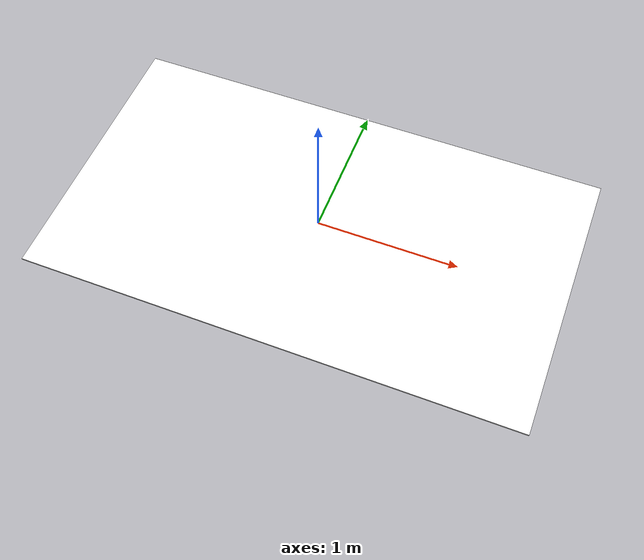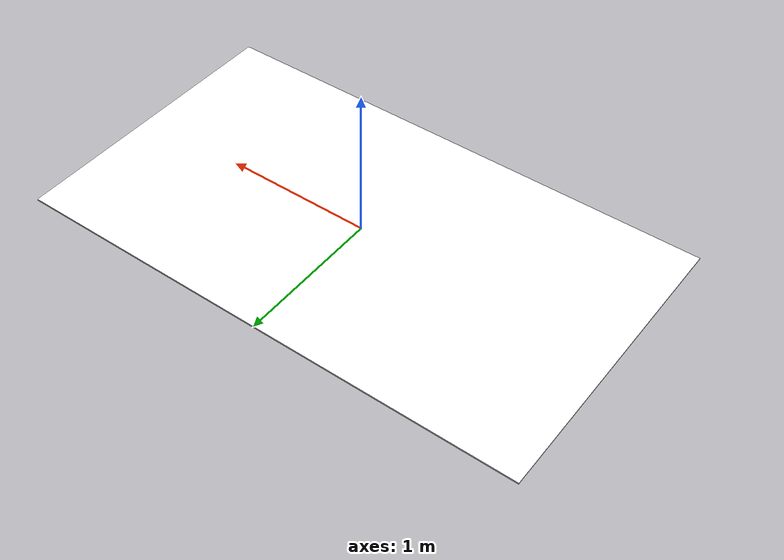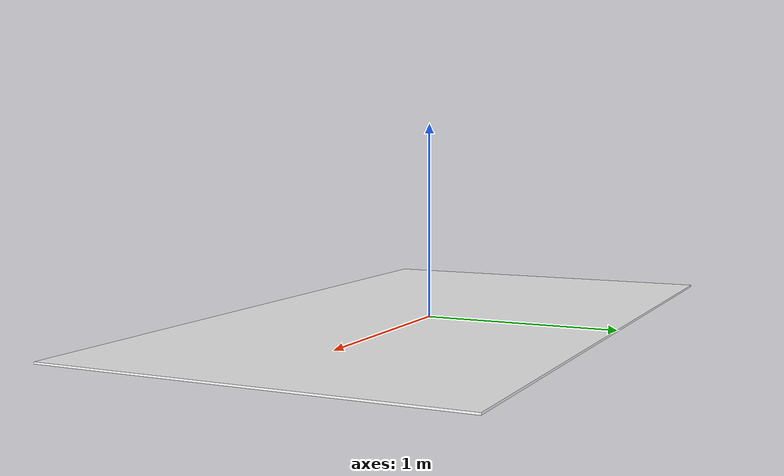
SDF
<?xml version="1.0" ?>
<sdf version="1.7">
  <model name="random_region">
    <static>true</static>
    <link name="link">
      <!-- 白色底层 -->
      <visual name="base_white">
        <geometry>
          <box>
            <size>3.5 2.0 0.01</size>
          </box>
        </geometry>
        <material>
          <ambient>1 1 1 1</ambient>
          <diffuse>1 1 1 1</diffuse>
        </material>
      </visual>

      <!-- 碰撞体 -->
      <collision name="collision">
        <geometry>
          <box>
            <size>0.0 0.0 0.0001</size>
          </box>
        </geometry>
      </collision>
    </link>
  </model>
</sdf>
